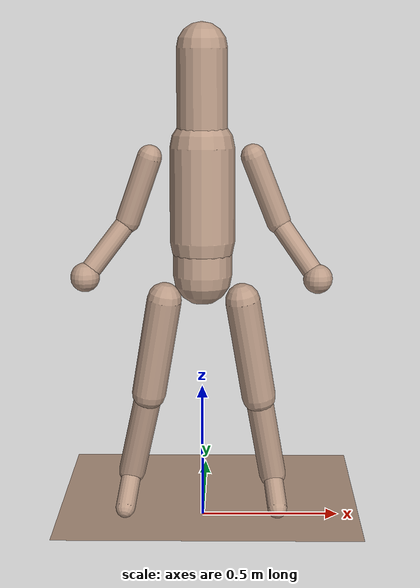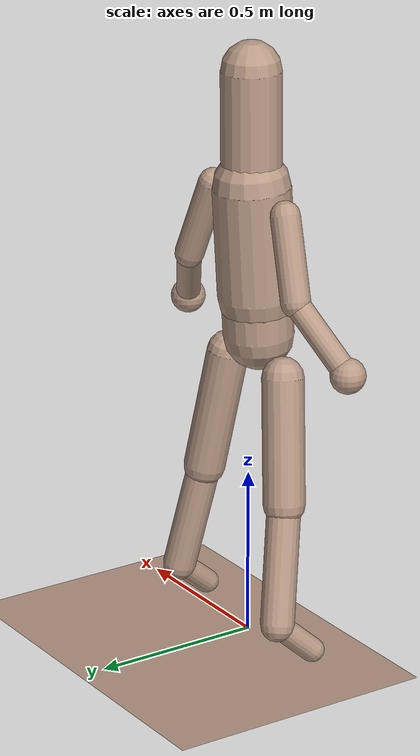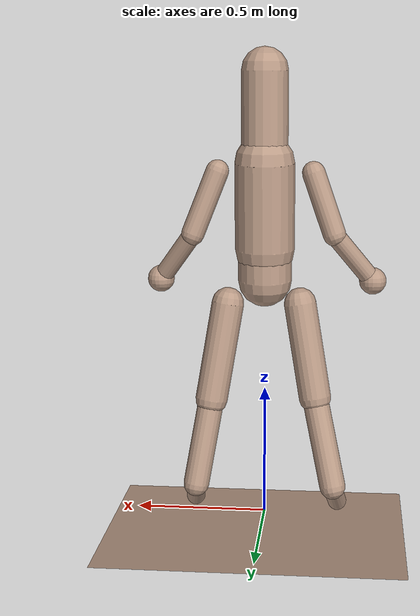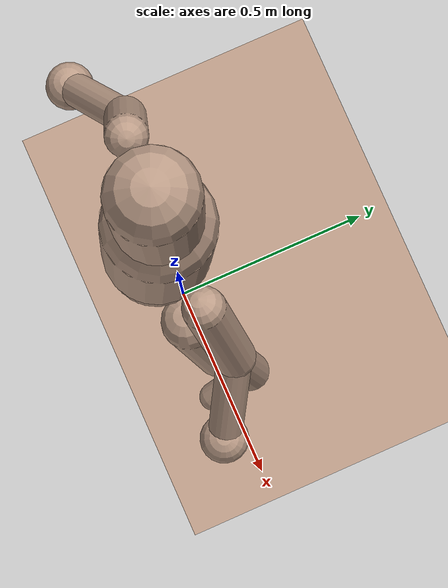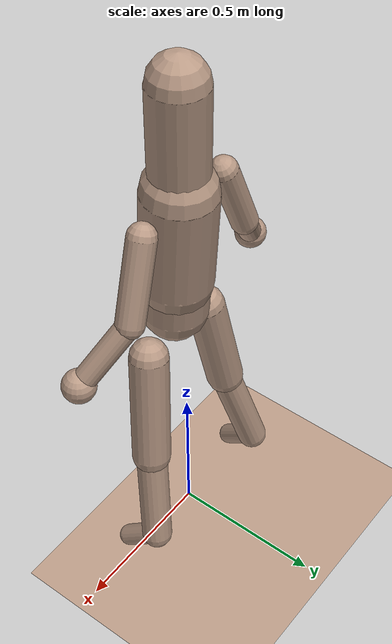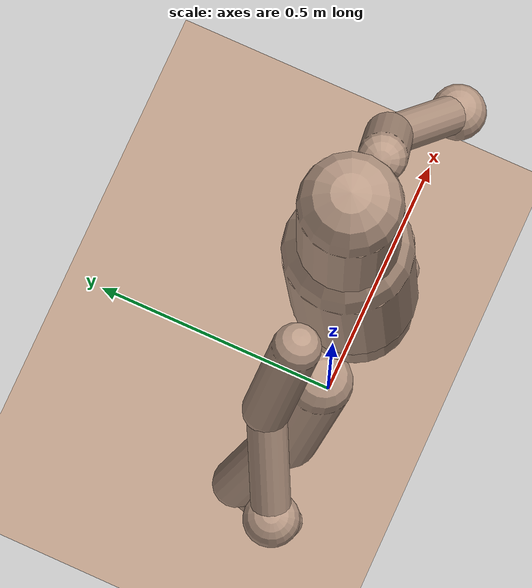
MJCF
<?xml version="1.0" ?>
<mujoco model="grandma">
  <compiler angle="degree" autolimits="true"/>
  <option timestep="0.005" iterations="20" solver="Newton" integrator="implicitfast"/>
  <default>
    <geom type="capsule" condim="3" friction="1.0 0.05 0.05" rgba="0.72 0.60 0.52 1" density="0"/>
    <joint type="hinge" damping="2" stiffness="0" armature="0.2" limited="true"/>
    <position ctrllimited="true" dampratio="1"/>
  </default>
  <asset>
    <texture name="grid" type="2d" builtin="checker" rgb1="0.24 0.26 0.28" rgb2="0.20 0.22 0.24" width="512" height="512"/>
    <material name="grid" texture="grid" texrepeat="8 8" reflectance="0.05"/>
  </asset>
  <worldbody>
    <light pos="0 0 4" dir="0 0 -1" directional="true"/>
    <geom name="floor" type="plane" size="20 20 0.1" material="grid" condim="3" friction="1.0 0.05 0.05"/>
    <body name="Pelvis" pos="0.00363 -0.03662 0.92056">
      <freejoint name="root"/>
      <geom name="g_Pelvis" fromto="0.00000 0.00000 0.00000 -0.00000 0.00695 0.11980" size="0.1030" mass="10.9274"/>
      <body name="Torso" pos="-0.00000 0.00695 0.11980">
        <geom name="g_Torso" fromto="0.00000 0.00000 0.00000 -0.00000 0.01888 0.32564" size="0.1133" mass="25.7576"/>
        <joint name="Torso_pitch" axis="1 0 0" range="-27.9 32.1"/>
        <joint name="Torso_roll" axis="0 1 0" range="-22.4 17.6"/>
        <joint name="Torso_yaw" axis="0 0 1" range="-35.0 35.0"/>
        <body name="Head" pos="-0.00000 0.01888 0.32564">
          <geom name="g_Head" fromto="0.00000 0.00000 0.00000 -0.00000 0.00261 0.33912" size="0.0876" mass="5.4638"/>
          <joint name="Head_pitch" axis="1 0 0" range="-37.5 42.5"/>
          <joint name="Head_roll" axis="0 1 0" range="-34.2 25.8"/>
          <joint name="Head_yaw" axis="0 0 1" range="-45.0 45.0"/>
        </body>
        <body name="UpperArmL" pos="0.17604 0.03235 0.29607">
          <geom name="g_UpperArmL" fromto="0.00000 0.00000 0.00000 0.09170 0.02222 -0.23472" size="0.0433" mass="2.3416"/>
          <joint name="UpperArmL_pitch" axis="1 0 0" range="-60.0 120.0"/>
          <joint name="UpperArmL_roll" axis="0 1 0" range="-151.4 20.0"/>
          <joint name="UpperArmL_yaw" axis="0 0 1" range="-57.9 62.1"/>
          <body name="ForearmL" pos="0.09170 0.02222 -0.23472">
            <geom name="g_ForearmL" fromto="0.00000 0.00000 0.00000 0.13571 -0.08348 -0.18703" size="0.0361" mass="1.5611"/>
            <joint name="ForearmL_pitch" axis="1 0 0" range="-20.0 140.0"/>
            <body name="GloveL" pos="0.13571 -0.08348 -0.18703">
              <geom name="g_GloveL" type="sphere" pos="0 0 0" size="0.0515" mass="0.7805"/>
              <joint name="GloveL_pitch" axis="1 0 0" range="-60.0 60.0"/>
              <joint name="GloveL_yaw" axis="0 0 1" range="-25.0 25.0"/>
            </body>
          </body>
        </body>
        <body name="UpperArmR" pos="-0.18335 0.03082 0.29244">
          <geom name="g_UpperArmR" fromto="0.00000 0.00000 0.00000 -0.08071 0.01867 -0.22741" size="0.0433" mass="2.3416"/>
          <joint name="UpperArmR_pitch" axis="1 0 0" range="-60.0 120.0"/>
          <joint name="UpperArmR_roll" axis="0 1 0" range="-20.0 146.9"/>
          <joint name="UpperArmR_yaw" axis="0 0 1" range="-63.3 56.7"/>
          <body name="ForearmR" pos="-0.08071 0.01867 -0.22741">
            <geom name="g_ForearmR" fromto="0.00000 0.00000 0.00000 -0.14670 -0.07616 -0.18703" size="0.0361" mass="1.5611"/>
            <joint name="ForearmR_pitch" axis="1 0 0" range="-20.0 140.0"/>
            <body name="GloveR" pos="-0.14670 -0.07616 -0.18703">
              <geom name="g_GloveR" type="sphere" pos="0 0 0" size="0.0515" mass="0.7805"/>
              <joint name="GloveR_pitch" axis="1 0 0" range="-60.0 60.0"/>
              <joint name="GloveR_yaw" axis="0 0 1" range="-25.0 25.0"/>
            </body>
          </body>
        </body>
      </body>
      <body name="ThighL" pos="0.14135 0.01084 -0.09287">
        <geom name="g_ThighL" fromto="0.00000 0.00000 0.00000 0.06040 0.04338 -0.37146" size="0.0618" mass="8.9761"/>
        <joint name="ThighL_pitch" axis="1 0 0" range="-110.0 20.0"/>
        <joint name="ThighL_roll" axis="0 1 0" range="-20.0 45.0"/>
        <joint name="ThighL_yaw" axis="0 0 1" range="-30.0 30.0"/>
        <body name="ShinL" pos="0.06040 0.04338 -0.37146">
          <geom name="g_ShinL" fromto="0.00000 0.00000 0.00000 0.05500 0.05434 -0.32637" size="0.0495" mass="3.9027"/>
          <joint name="ShinL_pitch" axis="1 0 0" range="-10.0 132.4"/>
          <body name="FootL" pos="0.05500 0.05434 -0.32637">
            <geom name="g_FootL" fromto="0.00000 0.00000 0.00000 0.01592 -0.10832 -0.09169" size="0.0361" mass="1.1708"/>
            <joint name="FootL_pitch" axis="1 0 0" range="-16.3 48.7"/>
            <joint name="FootL_roll" axis="0 1 0" range="-42.4 10.0"/>
          </body>
        </body>
      </body>
      <body name="ThighR" pos="-0.13627 0.00888 -0.08993">
        <geom name="g_ThighR" fromto="0.00000 0.00000 0.00000 -0.06175 0.03551 -0.35973" size="0.0618" mass="8.9761"/>
        <joint name="ThighR_pitch" axis="1 0 0" range="-115.0 15.0"/>
        <joint name="ThighR_roll" axis="0 1 0" range="-50.0 15.0"/>
        <joint name="ThighR_yaw" axis="0 0 1" range="-30.0 30.0"/>
        <body name="ShinR" pos="-0.06175 0.03551 -0.35973">
          <geom name="g_ShinR" fromto="0.00000 0.00000 0.00000 -0.07335 0.07181 -0.33373" size="0.0495" mass="3.9027"/>
          <joint name="ShinR_pitch" axis="1 0 0" range="-10.0 125.4"/>
          <body name="FootR" pos="-0.07335 0.07181 -0.33373">
            <geom name="g_FootR" fromto="0.00000 0.00000 0.00000 -0.01761 -0.11099 -0.10111" size="0.0361" mass="1.1708"/>
            <joint name="FootR_pitch" axis="1 0 0" range="-30.0 35.0"/>
            <joint name="FootR_roll" axis="0 1 0" range="-10.0 31.2"/>
          </body>
        </body>
      </body>
    </body>
  </worldbody>
  <actuator>
    <position name="a_Torso_pitch" joint="Torso_pitch" kp="400" ctrlrange="-0.487131 0.560067"/>
    <position name="a_Torso_roll" joint="Torso_roll" kp="400" ctrlrange="-0.391811 0.306320"/>
    <position name="a_Torso_yaw" joint="Torso_yaw" kp="400" ctrlrange="-0.610865 0.610865"/>
    <position name="a_Head_pitch" joint="Head_pitch" kp="60" ctrlrange="-0.654985 0.741278"/>
    <position name="a_Head_roll" joint="Head_roll" kp="60" ctrlrange="-0.597032 0.450166"/>
    <position name="a_Head_yaw" joint="Head_yaw" kp="60" ctrlrange="-0.785398 0.785398"/>
    <position name="a_ThighL_pitch" joint="ThighL_pitch" kp="500" ctrlrange="-1.919862 0.349066"/>
    <position name="a_ThighL_roll" joint="ThighL_roll" kp="500" ctrlrange="-0.349066 0.785398"/>
    <position name="a_ThighL_yaw" joint="ThighL_yaw" kp="500" ctrlrange="-0.523599 0.523599"/>
    <position name="a_ShinL_pitch" joint="ShinL_pitch" kp="400" ctrlrange="-0.174533 2.311569"/>
    <position name="a_FootL_pitch" joint="FootL_pitch" kp="200" ctrlrange="-0.285266 0.849198"/>
    <position name="a_FootL_roll" joint="FootL_roll" kp="200" ctrlrange="-0.739292 0.174533"/>
    <position name="a_ThighR_pitch" joint="ThighR_pitch" kp="500" ctrlrange="-2.006322 0.262606"/>
    <position name="a_ThighR_roll" joint="ThighR_roll" kp="500" ctrlrange="-0.872354 0.262110"/>
    <position name="a_ThighR_yaw" joint="ThighR_yaw" kp="500" ctrlrange="-0.523599 0.523599"/>
    <position name="a_ShinR_pitch" joint="ShinR_pitch" kp="400" ctrlrange="-0.174533 2.188338"/>
    <position name="a_FootR_pitch" joint="FootR_pitch" kp="200" ctrlrange="-0.523851 0.610613"/>
    <position name="a_FootR_roll" joint="FootR_roll" kp="200" ctrlrange="-0.174533 0.544190"/>
    <position name="a_UpperArmL_pitch" joint="UpperArmL_pitch" kp="100" ctrlrange="-1.047198 2.094395"/>
    <position name="a_UpperArmL_roll" joint="UpperArmL_roll" kp="100" ctrlrange="-2.641864 0.349066"/>
    <position name="a_UpperArmL_yaw" joint="UpperArmL_yaw" kp="100" ctrlrange="-1.010688 1.083707"/>
    <position name="a_ForearmL_pitch" joint="ForearmL_pitch" kp="60" ctrlrange="-0.349066 2.443461"/>
    <position name="a_GloveL_pitch" joint="GloveL_pitch" kp="20" ctrlrange="-1.047198 1.047198"/>
    <position name="a_GloveL_yaw" joint="GloveL_yaw" kp="20" ctrlrange="-0.436332 0.436332"/>
    <position name="a_UpperArmR_pitch" joint="UpperArmR_pitch" kp="100" ctrlrange="-1.047198 2.094395"/>
    <position name="a_UpperArmR_roll" joint="UpperArmR_roll" kp="100" ctrlrange="-0.349066 2.564505"/>
    <position name="a_UpperArmR_yaw" joint="UpperArmR_yaw" kp="100" ctrlrange="-1.104173 0.990222"/>
    <position name="a_ForearmR_pitch" joint="ForearmR_pitch" kp="60" ctrlrange="-0.349066 2.443461"/>
    <position name="a_GloveR_pitch" joint="GloveR_pitch" kp="20" ctrlrange="-1.047198 1.047198"/>
    <position name="a_GloveR_yaw" joint="GloveR_yaw" kp="20" ctrlrange="-0.436332 0.436332"/>
  </actuator>
  <sensor>
    <framepos name="s_FootL_pos" objtype="body" objname="FootL"/>
    <framepos name="s_FootR_pos" objtype="body" objname="FootR"/>
    <framepos name="s_Head_pos" objtype="body" objname="Head"/>
    <framezaxis name="s_Pelvis_up" objtype="body" objname="Pelvis"/>
    <subtreecom name="s_com" body="Pelvis"/>
  </sensor>
</mujoco>
